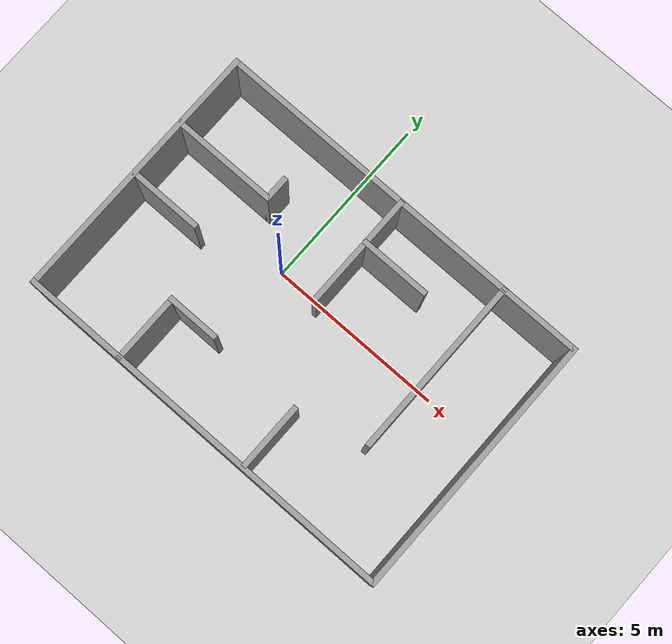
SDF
<sdf version="1.7">
 <world name="default">
  <light name="sun" type="directional">
   <pose>0 0 10 0 -0 0</pose>
   <diffuse>0.8 0.8 0.8 1</diffuse>
   <specular>0.2 0.2 0.2 1</specular>
   <attenuation>
    <range>1000</range>
    <constant>0.9</constant>
    <linear>0.01</linear>
    <quadratic>0.001</quadratic>
   </attenuation>
   <direction>-0.5 0.1 -0.9</direction>
   <spot><inner_angle>0</inner_angle><outer_angle>0</outer_angle><falloff>0</falloff></spot>
  </light>
  <model name="ground_plane">
   <static>1</static>
   <link name="link">
    <collision name="collision">
     <geometry><plane><normal>0 0 1</normal><size>100 100</size></plane></geometry>
     <surface><friction><ode><mu>100</mu><mu2>50</mu2></ode></friction></surface>
    </collision>
    <visual name="visual">
     <cast_shadows>0</cast_shadows>
     <geometry><plane><normal>0 0 1</normal><size>100 100</size></plane></geometry>
     <material>
      <script><uri>file://media/materials/scripts/gazebo.material</uri><name>Gazebo/Grey</name></script>
     </material>
    </visual>
   </link>
  </model>
  <gravity>0 0 -9.8</gravity>
  <magnetic_field>6e-06 2.3e-05 -4.2e-05</magnetic_field>
  <atmosphere type="adiabatic"/>
  <physics type="ode">
   <max_step_size>0.001</max_step_size>
   <real_time_factor>1</real_time_factor>
   <real_time_update_rate>1000</real_time_update_rate>
  </physics>
  <scene><ambient>0.4 0.4 0.4 1</ambient><background>0.7 0.7 0.7 1</background><shadows>1</shadows></scene>
  <audio><device>default</device></audio>
  <spherical_coordinates>
   <surface_model>EARTH_WGS84</surface_model>
   <latitude_deg>0</latitude_deg>
   <longitude_deg>0</longitude_deg>
   <elevation>0</elevation>
   <heading_deg>0</heading_deg>
  </spherical_coordinates>
  <model name="building1_0">
   <link name="Wall_3">
    <pose>0 -3.675 0 0 -0 0</pose>
    <visual name="Wall_3_Visual">
     <pose>0 0 1.25 0 -0 0</pose>
     <geometry><box><size>11 0.15 2.5</size></box></geometry>
     <material>
      <script><uri>file://media/materials/scripts/gazebo.material</uri><name>Gazebo/Grey</name></script>
      <ambient>1 1 1 1</ambient>
      <shader type="pixel"/>
     </material>
     <meta><layer>0</layer></meta>
    </visual>
    <collision name="Wall_3_Collision">
     <pose>0 0 1.25 0 -0 0</pose>
     <geometry><box><size>11 0.15 2.5</size></box></geometry>
     <surface>
      <friction>
       <ode><mu>1</mu><mu2>1</mu2><fdir1>0 0 0</fdir1><slip1>0</slip1><slip2>0</slip2></ode>
       <torsional>
        <coefficient>1</coefficient>
        <patch_radius>0</patch_radius>
        <surface_radius>0</surface_radius>
        <use_patch_radius>1</use_patch_radius>
        <ode><slip>0</slip></ode>
       </torsional>
      </friction>
      <bounce><restitution_coefficient>0</restitution_coefficient><threshold>1e+06</threshold></bounce>
      <contact>
       <collide_without_contact>0</collide_without_contact>
       <collide_without_contact_bitmask>1</collide_without_contact_bitmask>
       <collide_bitmask>1</collide_bitmask>
       <ode>
        <soft_cfm>0</soft_cfm>
        <soft_erp>0.2</soft_erp>
        <kp>1e+13</kp>
        <kd>1</kd>
        <max_vel>0.01</max_vel>
        <min_depth>0</min_depth>
       </ode>
       <bullet>
        <split_impulse>1</split_impulse>
        <split_impulse_penetration_threshold>-0.01</split_impulse_penetration_threshold>
        <soft_cfm>0</soft_cfm>
        <soft_erp>0.2</soft_erp>
        <kp>1e+13</kp>
        <kd>1</kd>
       </bullet>
      </contact>
     </surface>
    </collision>
   </link>
   <link name="Wall_34">
    <pose>-3.98985 1.60681 0 0 -0 0</pose>
    <visual name="Wall_34_Visual">
     <pose>0 0 1.25 0 -0 0</pose>
     <geometry><box><size>3 0.15 2.5</size></box></geometry>
     <material>
      <script><uri>file://media/materials/scripts/gazebo.material</uri><name>Gazebo/Grey</name></script>
      <ambient>1 1 1 1</ambient>
      <shader type="pixel"/>
     </material>
     <meta><layer>0</layer></meta>
    </visual>
    <collision name="Wall_34_Collision">
     <pose>0 0 1.25 0 -0 0</pose>
     <geometry><box><size>3 0.15 2.5</size></box></geometry>
     <surface>
      <friction>
       <ode><mu>1</mu><mu2>1</mu2><fdir1>0 0 0</fdir1><slip1>0</slip1><slip2>0</slip2></ode>
       <torsional>
        <coefficient>1</coefficient>
        <patch_radius>0</patch_radius>
        <surface_radius>0</surface_radius>
        <use_patch_radius>1</use_patch_radius>
        <ode><slip>0</slip></ode>
       </torsional>
      </friction>
      <bounce><restitution_coefficient>0</restitution_coefficient><threshold>1e+06</threshold></bounce>
      <contact>
       <collide_without_contact>0</collide_without_contact>
       <collide_without_contact_bitmask>1</collide_without_contact_bitmask>
       <collide_bitmask>1</collide_bitmask>
       <ode>
        <soft_cfm>0</soft_cfm>
        <soft_erp>0.2</soft_erp>
        <kp>1e+13</kp>
        <kd>1</kd>
        <max_vel>0.01</max_vel>
        <min_depth>0</min_depth>
       </ode>
       <bullet>
        <split_impulse>1</split_impulse>
        <split_impulse_penetration_threshold>-0.01</split_impulse_penetration_threshold>
        <soft_cfm>0</soft_cfm>
        <soft_erp>0.2</soft_erp>
        <kp>1e+13</kp>
        <kd>1</kd>
       </bullet>
      </contact>
     </surface>
    </collision>
   </link>
   <link name="Wall_35">
    <pose>-2.56485 1.90681 0 0 -0 1.5708</pose>
    <visual name="Wall_35_Visual">
     <pose>0 0 1.25 0 -0 0</pose>
     <geometry><box><size>0.75 0.15 2.5</size></box></geometry>
     <material>
      <script><uri>file://media/materials/scripts/gazebo.material</uri><name>Gazebo/Grey</name></script>
      <ambient>1 1 1 1</ambient>
      <shader type="pixel"/>
     </material>
     <meta><layer>0</layer></meta>
    </visual>
    <collision name="Wall_35_Collision">
     <pose>0 0 1.25 0 -0 0</pose>
     <geometry><box><size>0.75 0.15 2.5</size></box></geometry>
     <surface>
      <friction>
       <ode><mu>1</mu><mu2>1</mu2><fdir1>0 0 0</fdir1><slip1>0</slip1><slip2>0</slip2></ode>
       <torsional>
        <coefficient>1</coefficient>
        <patch_radius>0</patch_radius>
        <surface_radius>0</surface_radius>
        <use_patch_radius>1</use_patch_radius>
        <ode><slip>0</slip></ode>
       </torsional>
      </friction>
      <bounce><restitution_coefficient>0</restitution_coefficient><threshold>1e+06</threshold></bounce>
      <contact>
       <collide_without_contact>0</collide_without_contact>
       <collide_without_contact_bitmask>1</collide_without_contact_bitmask>
       <collide_bitmask>1</collide_bitmask>
       <ode>
        <soft_cfm>0</soft_cfm>
        <soft_erp>0.2</soft_erp>
        <kp>1e+13</kp>
        <kd>1</kd>
        <max_vel>0.01</max_vel>
        <min_depth>0</min_depth>
       </ode>
       <bullet>
        <split_impulse>1</split_impulse>
        <split_impulse_penetration_threshold>-0.01</split_impulse_penetration_threshold>
        <soft_cfm>0</soft_cfm>
        <soft_erp>0.2</soft_erp>
        <kp>1e+13</kp>
        <kd>1</kd>
       </bullet>
      </contact>
     </surface>
    </collision>
   </link>
   <link name="Wall_37">
    <pose>-2.6376 -2.76847 0 0 -0 1.5708</pose>
    <inertial>
     <inertia><ixx>0</ixx><ixy>0</ixy><ixz>0</ixz><iyy>0</iyy><iyz>0</iyz><izz>0</izz></inertia>
     <mass>0</mass>
    </inertial>
    <visual name="Wall_37_Visual">
     <pose>0 0 1.25 0 -0 0</pose>
     <geometry><box><size>1.89664 0.15 2.5</size></box></geometry>
     <material>
      <script><uri>file://media/materials/scripts/gazebo.material</uri><name>Gazebo/Grey</name></script>
      <ambient>1 1 1 1</ambient>
      <shader type="pixel"/>
     </material>
     <meta><layer>0</layer></meta>
    </visual>
    <collision name="Wall_37_Collision">
     <pose>0 0 1.25 0 -0 0</pose>
     <geometry><box><size>1.89664 0.15 2.5</size></box></geometry>
     <surface>
      <friction>
       <ode><mu>1</mu><mu2>1</mu2><fdir1>0 0 0</fdir1><slip1>0</slip1><slip2>0</slip2></ode>
       <torsional>
        <coefficient>1</coefficient>
        <patch_radius>0</patch_radius>
        <surface_radius>0</surface_radius>
        <use_patch_radius>1</use_patch_radius>
        <ode><slip>0</slip></ode>
       </torsional>
      </friction>
      <bounce><restitution_coefficient>0</restitution_coefficient><threshold>1e+06</threshold></bounce>
      <contact>
       <collide_without_contact>0</collide_without_contact>
       <collide_without_contact_bitmask>1</collide_without_contact_bitmask>
       <collide_bitmask>1</collide_bitmask>
       <ode>
        <soft_cfm>0</soft_cfm>
        <soft_erp>0.2</soft_erp>
        <kp>1e+13</kp>
        <kd>1</kd>
        <max_vel>0.01</max_vel>
        <min_depth>0</min_depth>
       </ode>
       <bullet>
        <split_impulse>1</split_impulse>
        <split_impulse_penetration_threshold>-0.01</split_impulse_penetration_threshold>
        <soft_cfm>0</soft_cfm>
        <soft_erp>0.2</soft_erp>
        <kp>1e+13</kp>
        <kd>1</kd>
       </bullet>
      </contact>
     </surface>
    </collision>
   </link>
   <link name="Wall_38">
    <pose>-1.9626 -1.79418 0 0 -0 0</pose>
    <visual name="Wall_38_Visual">
     <pose>0 0 1.25 0 -0 0</pose>
     <geometry><box><size>1.5 0.15 2.5</size></box></geometry>
     <material>
      <script><uri>file://media/materials/scripts/gazebo.material</uri><name>Gazebo/Grey</name></script>
      <ambient>1 1 1 1</ambient>
      <shader type="pixel"/>
     </material>
     <meta><layer>0</layer></meta>
    </visual>
    <collision name="Wall_38_Collision">
     <pose>0 0 1.25 0 -0 0</pose>
     <geometry><box><size>1.5 0.15 2.5</size></box></geometry>
     <surface>
      <friction>
       <ode><mu>1</mu><mu2>1</mu2><fdir1>0 0 0</fdir1><slip1>0</slip1><slip2>0</slip2></ode>
       <torsional>
        <coefficient>1</coefficient>
        <patch_radius>0</patch_radius>
        <surface_radius>0</surface_radius>
        <use_patch_radius>1</use_patch_radius>
        <ode><slip>0</slip></ode>
       </torsional>
      </friction>
      <bounce><restitution_coefficient>0</restitution_coefficient><threshold>1e+06</threshold></bounce>
      <contact>
       <collide_without_contact>0</collide_without_contact>
       <collide_without_contact_bitmask>1</collide_without_contact_bitmask>
       <collide_bitmask>1</collide_bitmask>
       <ode>
        <soft_cfm>0</soft_cfm>
        <soft_erp>0.2</soft_erp>
        <kp>1e+13</kp>
        <kd>1</kd>
        <max_vel>0.01</max_vel>
        <min_depth>0</min_depth>
       </ode>
       <bullet>
        <split_impulse>1</split_impulse>
        <split_impulse_penetration_threshold>-0.01</split_impulse_penetration_threshold>
        <soft_cfm>0</soft_cfm>
        <soft_erp>0.2</soft_erp>
        <kp>1e+13</kp>
        <kd>1</kd>
       </bullet>
      </contact>
     </surface>
    </collision>
   </link>
   <link name="Wall_43">
    <pose>1.33225 -2.7093 0 0 0 -1.5708</pose>
    <inertial>
     <inertia><ixx>0</ixx><ixy>0</ixy><ixz>0</ixz><iyy>0</iyy><iyz>0</iyz><izz>0</izz></inertia>
     <mass>0</mass>
    </inertial>
    <visual name="Wall_43_Visual">
     <pose>0 0 1.25 0 -0 0</pose>
     <geometry><box><size>1.90473 0.15 2.5</size></box></geometry>
     <material>
      <script><uri>file://media/materials/scripts/gazebo.material</uri><name>Gazebo/Grey</name></script>
      <ambient>1 1 1 1</ambient>
      <shader type="pixel"/>
     </material>
     <meta><layer>0</layer></meta>
    </visual>
    <collision name="Wall_43_Collision">
     <pose>0 0 1.25 0 -0 0</pose>
     <geometry><box><size>1.90473 0.15 2.5</size></box></geometry>
     <surface>
      <friction>
       <ode><mu>1</mu><mu2>1</mu2><fdir1>0 0 0</fdir1><slip1>0</slip1><slip2>0</slip2></ode>
       <torsional>
        <coefficient>1</coefficient>
        <patch_radius>0</patch_radius>
        <surface_radius>0</surface_radius>
        <use_patch_radius>1</use_patch_radius>
        <ode><slip>0</slip></ode>
       </torsional>
      </friction>
      <bounce><restitution_coefficient>0</restitution_coefficient><threshold>1e+06</threshold></bounce>
      <contact>
       <collide_without_contact>0</collide_without_contact>
       <collide_without_contact_bitmask>1</collide_without_contact_bitmask>
       <collide_bitmask>1</collide_bitmask>
       <ode>
        <soft_cfm>0</soft_cfm>
        <soft_erp>0.2</soft_erp>
        <kp>1e+13</kp>
        <kd>1</kd>
        <max_vel>0.01</max_vel>
        <min_depth>0</min_depth>
       </ode>
       <bullet>
        <split_impulse>1</split_impulse>
        <split_impulse_penetration_threshold>-0.01</split_impulse_penetration_threshold>
        <soft_cfm>0</soft_cfm>
        <soft_erp>0.2</soft_erp>
        <kp>1e+13</kp>
        <kd>1</kd>
       </bullet>
      </contact>
     </surface>
    </collision>
   </link>
   <link name="Wall_45">
    <pose>3.22107 1.19267 0 0 0 -1.5708</pose>
    <inertial>
     <inertia><ixx>0</ixx><ixy>0</ixy><ixz>0</ixz><iyy>0</iyy><iyz>0</iyz><izz>0</izz></inertia>
     <mass>0</mass>
    </inertial>
    <visual name="Wall_45_Visual">
     <pose>0 0 1.25 0 -0 0</pose>
     <geometry><box><size>5.09033 0.15 2.5</size></box></geometry>
     <material>
      <script><uri>file://media/materials/scripts/gazebo.material</uri><name>Gazebo/Grey</name></script>
      <ambient>1 1 1 1</ambient>
      <shader type="pixel"/>
     </material>
     <meta><layer>0</layer></meta>
    </visual>
    <collision name="Wall_45_Collision">
     <pose>0 0 1.25 0 -0 0</pose>
     <geometry><box><size>5.09033 0.15 2.5</size></box></geometry>
     <surface>
      <friction>
       <ode><mu>1</mu><mu2>1</mu2><fdir1>0 0 0</fdir1><slip1>0</slip1><slip2>0</slip2></ode>
       <torsional>
        <coefficient>1</coefficient>
        <patch_radius>0</patch_radius>
        <surface_radius>0</surface_radius>
        <use_patch_radius>1</use_patch_radius>
        <ode><slip>0</slip></ode>
       </torsional>
      </friction>
      <bounce><restitution_coefficient>0</restitution_coefficient><threshold>1e+06</threshold></bounce>
      <contact>
       <collide_without_contact>0</collide_without_contact>
       <collide_without_contact_bitmask>1</collide_without_contact_bitmask>
       <collide_bitmask>1</collide_bitmask>
       <ode>
        <soft_cfm>0</soft_cfm>
        <soft_erp>0.2</soft_erp>
        <kp>1e+13</kp>
        <kd>1</kd>
        <max_vel>0.01</max_vel>
        <min_depth>0</min_depth>
       </ode>
       <bullet>
        <split_impulse>1</split_impulse>
        <split_impulse_penetration_threshold>-0.01</split_impulse_penetration_threshold>
        <soft_cfm>0</soft_cfm>
        <soft_erp>0.2</soft_erp>
        <kp>1e+13</kp>
        <kd>1</kd>
       </bullet>
      </contact>
     </surface>
    </collision>
   </link>
   <link name="Wall_47">
    <pose>-0.045501 2.09346 0 0 0 -1.5708</pose>
    <visual name="Wall_47_Visual">
     <pose>0 0 1.25 0 -0 0</pose>
     <geometry><box><size>3.25 0.15 2.5</size></box></geometry>
     <material>
      <script><uri>file://media/materials/scripts/gazebo.material</uri><name>Gazebo/Grey</name></script>
      <ambient>1 1 1 1</ambient>
      <shader type="pixel"/>
     </material>
     <meta><layer>0</layer></meta>
    </visual>
    <collision name="Wall_47_Collision">
     <pose>0 0 1.25 0 -0 0</pose>
     <geometry><box><size>3.25 0.15 2.5</size></box></geometry>
     <surface>
      <friction>
       <ode><mu>1</mu><mu2>1</mu2><fdir1>0 0 0</fdir1><slip1>0</slip1><slip2>0</slip2></ode>
       <torsional>
        <coefficient>1</coefficient>
        <patch_radius>0</patch_radius>
        <surface_radius>0</surface_radius>
        <use_patch_radius>1</use_patch_radius>
        <ode><slip>0</slip></ode>
       </torsional>
      </friction>
      <bounce><restitution_coefficient>0</restitution_coefficient><threshold>1e+06</threshold></bounce>
      <contact>
       <collide_without_contact>0</collide_without_contact>
       <collide_without_contact_bitmask>1</collide_without_contact_bitmask>
       <collide_bitmask>1</collide_bitmask>
       <ode>
        <soft_cfm>0</soft_cfm>
        <soft_erp>0.2</soft_erp>
        <kp>1e+13</kp>
        <kd>1</kd>
        <max_vel>0.01</max_vel>
        <min_depth>0</min_depth>
       </ode>
       <bullet>
        <split_impulse>1</split_impulse>
        <split_impulse_penetration_threshold>-0.01</split_impulse_penetration_threshold>
        <soft_cfm>0</soft_cfm>
        <soft_erp>0.2</soft_erp>
        <kp>1e+13</kp>
        <kd>1</kd>
       </bullet>
      </contact>
     </surface>
    </collision>
   </link>
   <link name="Wall_49">
    <pose>0.879499 2.34741 0 0 -0 0</pose>
    <visual name="Wall_49_Visual">
     <pose>0 0 1.25 0 -0 0</pose>
     <geometry><box><size>2 0.15 2.5</size></box></geometry>
     <material>
      <script><uri>file://media/materials/scripts/gazebo.material</uri><name>Gazebo/Grey</name></script>
      <ambient>1 1 1 1</ambient>
      <shader type="pixel"/>
     </material>
     <meta><layer>0</layer></meta>
    </visual>
    <collision name="Wall_49_Collision">
     <pose>0 0 1.25 0 -0 0</pose>
     <geometry><box><size>2 0.15 2.5</size></box></geometry>
     <surface>
      <friction>
       <ode><mu>1</mu><mu2>1</mu2><fdir1>0 0 0</fdir1><slip1>0</slip1><slip2>0</slip2></ode>
       <torsional>
        <coefficient>1</coefficient>
        <patch_radius>0</patch_radius>
        <surface_radius>0</surface_radius>
        <use_patch_radius>1</use_patch_radius>
        <ode><slip>0</slip></ode>
       </torsional>
      </friction>
      <bounce><restitution_coefficient>0</restitution_coefficient><threshold>1e+06</threshold></bounce>
      <contact>
       <collide_without_contact>0</collide_without_contact>
       <collide_without_contact_bitmask>1</collide_without_contact_bitmask>
       <collide_bitmask>1</collide_bitmask>
       <ode>
        <soft_cfm>0</soft_cfm>
        <soft_erp>0.2</soft_erp>
        <kp>1e+13</kp>
        <kd>1</kd>
        <max_vel>0.01</max_vel>
        <min_depth>0</min_depth>
       </ode>
       <bullet>
        <split_impulse>1</split_impulse>
        <split_impulse_penetration_threshold>-0.01</split_impulse_penetration_threshold>
        <soft_cfm>0</soft_cfm>
        <soft_erp>0.2</soft_erp>
        <kp>1e+13</kp>
        <kd>1</kd>
       </bullet>
      </contact>
     </surface>
    </collision>
   </link>
   <link name="Wall_5">
    <pose>-5.425 0 0 0 -0 1.5708</pose>
    <visual name="Wall_5_Visual">
     <pose>0 0 1.25 0 -0 0</pose>
     <geometry><box><size>7.5 0.15 2.5</size></box></geometry>
     <material>
      <script><uri>file://media/materials/scripts/gazebo.material</uri><name>Gazebo/Grey</name></script>
      <ambient>1 1 1 1</ambient>
      <shader type="pixel"/>
     </material>
     <meta><layer>0</layer></meta>
    </visual>
    <collision name="Wall_5_Collision">
     <pose>0 0 1.25 0 -0 0</pose>
     <geometry><box><size>7.5 0.15 2.5</size></box></geometry>
     <surface>
      <friction>
       <ode><mu>1</mu><mu2>1</mu2><fdir1>0 0 0</fdir1><slip1>0</slip1><slip2>0</slip2></ode>
       <torsional>
        <coefficient>1</coefficient>
        <patch_radius>0</patch_radius>
        <surface_radius>0</surface_radius>
        <use_patch_radius>1</use_patch_radius>
        <ode><slip>0</slip></ode>
       </torsional>
      </friction>
      <bounce><restitution_coefficient>0</restitution_coefficient><threshold>1e+06</threshold></bounce>
      <contact>
       <collide_without_contact>0</collide_without_contact>
       <collide_without_contact_bitmask>1</collide_without_contact_bitmask>
       <collide_bitmask>1</collide_bitmask>
       <ode>
        <soft_cfm>0</soft_cfm>
        <soft_erp>0.2</soft_erp>
        <kp>1e+13</kp>
        <kd>1</kd>
        <max_vel>0.01</max_vel>
        <min_depth>0</min_depth>
       </ode>
       <bullet>
        <split_impulse>1</split_impulse>
        <split_impulse_penetration_threshold>-0.01</split_impulse_penetration_threshold>
        <soft_cfm>0</soft_cfm>
        <soft_erp>0.2</soft_erp>
        <kp>1e+13</kp>
        <kd>1</kd>
       </bullet>
      </contact>
     </surface>
    </collision>
   </link>
   <link name="Wall_53">
    <pose>-4.44397 -0.07277 0 0 -0 0</pose>
    <inertial>
     <inertia><ixx>0</ixx><ixy>0</ixy><ixz>0</ixz><iyy>0</iyy><iyz>0</iyz><izz>0</izz></inertia>
     <mass>0</mass>
    </inertial>
    <visual name="Wall_53_Visual">
     <pose>0 0 1.25 0 -0 0</pose>
     <geometry><box><size>2.11168 0.15 2.5</size></box></geometry>
     <material>
      <script><uri>file://media/materials/scripts/gazebo.material</uri><name>Gazebo/Grey</name></script>
      <ambient>1 1 1 1</ambient>
      <shader type="pixel"/>
     </material>
     <meta><layer>0</layer></meta>
    </visual>
    <collision name="Wall_53_Collision">
     <pose>0 0 1.25 0 -0 0</pose>
     <geometry><box><size>2.11168 0.15 2.5</size></box></geometry>
     <surface>
      <friction>
       <ode><mu>1</mu><mu2>1</mu2><fdir1>0 0 0</fdir1><slip1>0</slip1><slip2>0</slip2></ode>
       <torsional>
        <coefficient>1</coefficient>
        <patch_radius>0</patch_radius>
        <surface_radius>0</surface_radius>
        <use_patch_radius>1</use_patch_radius>
        <ode><slip>0</slip></ode>
       </torsional>
      </friction>
      <bounce><restitution_coefficient>0</restitution_coefficient><threshold>1e+06</threshold></bounce>
      <contact>
       <collide_without_contact>0</collide_without_contact>
       <collide_without_contact_bitmask>1</collide_without_contact_bitmask>
       <collide_bitmask>1</collide_bitmask>
       <ode>
        <soft_cfm>0</soft_cfm>
        <soft_erp>0.2</soft_erp>
        <kp>1e+13</kp>
        <kd>1</kd>
        <max_vel>0.01</max_vel>
        <min_depth>0</min_depth>
       </ode>
       <bullet>
        <split_impulse>1</split_impulse>
        <split_impulse_penetration_threshold>-0.01</split_impulse_penetration_threshold>
        <soft_cfm>0</soft_cfm>
        <soft_erp>0.2</soft_erp>
        <kp>1e+13</kp>
        <kd>1</kd>
       </bullet>
      </contact>
     </surface>
    </collision>
   </link>
   <link name="Wall_6">
    <pose>0 3.675 0 0 -0 0</pose>
    <visual name="Wall_6_Visual">
     <pose>0 0 1.25 0 -0 0</pose>
     <geometry><box><size>11 0.15 2.5</size></box></geometry>
     <material>
      <script><uri>file://media/materials/scripts/gazebo.material</uri><name>Gazebo/Grey</name></script>
      <ambient>1 1 1 1</ambient>
      <shader type="pixel"/>
     </material>
     <meta><layer>0</layer></meta>
    </visual>
    <collision name="Wall_6_Collision">
     <pose>0 0 1.25 0 -0 0</pose>
     <geometry><box><size>11 0.15 2.5</size></box></geometry>
     <surface>
      <friction>
       <ode><mu>1</mu><mu2>1</mu2><fdir1>0 0 0</fdir1><slip1>0</slip1><slip2>0</slip2></ode>
       <torsional>
        <coefficient>1</coefficient>
        <patch_radius>0</patch_radius>
        <surface_radius>0</surface_radius>
        <use_patch_radius>1</use_patch_radius>
        <ode><slip>0</slip></ode>
       </torsional>
      </friction>
      <bounce><restitution_coefficient>0</restitution_coefficient><threshold>1e+06</threshold></bounce>
      <contact>
       <collide_without_contact>0</collide_without_contact>
       <collide_without_contact_bitmask>1</collide_without_contact_bitmask>
       <collide_bitmask>1</collide_bitmask>
       <ode>
        <soft_cfm>0</soft_cfm>
        <soft_erp>0.2</soft_erp>
        <kp>1e+13</kp>
        <kd>1</kd>
        <max_vel>0.01</max_vel>
        <min_depth>0</min_depth>
       </ode>
       <bullet>
        <split_impulse>1</split_impulse>
        <split_impulse_penetration_threshold>-0.01</split_impulse_penetration_threshold>
        <soft_cfm>0</soft_cfm>
        <soft_erp>0.2</soft_erp>
        <kp>1e+13</kp>
        <kd>1</kd>
       </bullet>
      </contact>
     </surface>
    </collision>
   </link>
   <link name="Wall_7">
    <pose>5.425 0 0 0 0 -1.5708</pose>
    <visual name="Wall_7_Visual">
     <pose>0 0 1.25 0 -0 0</pose>
     <geometry><box><size>7.5 0.15 2.5</size></box></geometry>
     <material>
      <script><uri>file://media/materials/scripts/gazebo.material</uri><name>Gazebo/Grey</name></script>
      <ambient>1 1 1 1</ambient>
      <shader type="pixel"/>
     </material>
     <meta><layer>0</layer></meta>
    </visual>
    <collision name="Wall_7_Collision">
     <pose>0 0 1.25 0 -0 0</pose>
     <geometry><box><size>7.5 0.15 2.5</size></box></geometry>
     <surface>
      <friction>
       <ode><mu>1</mu><mu2>1</mu2><fdir1>0 0 0</fdir1><slip1>0</slip1><slip2>0</slip2></ode>
       <torsional>
        <coefficient>1</coefficient>
        <patch_radius>0</patch_radius>
        <surface_radius>0</surface_radius>
        <use_patch_radius>1</use_patch_radius>
        <ode><slip>0</slip></ode>
       </torsional>
      </friction>
      <bounce><restitution_coefficient>0</restitution_coefficient><threshold>1e+06</threshold></bounce>
      <contact>
       <collide_without_contact>0</collide_without_contact>
       <collide_without_contact_bitmask>1</collide_without_contact_bitmask>
       <collide_bitmask>1</collide_bitmask>
       <ode>
        <soft_cfm>0</soft_cfm>
        <soft_erp>0.2</soft_erp>
        <kp>1e+13</kp>
        <kd>1</kd>
        <max_vel>0.01</max_vel>
        <min_depth>0</min_depth>
       </ode>
       <bullet>
        <split_impulse>1</split_impulse>
        <split_impulse_penetration_threshold>-0.01</split_impulse_penetration_threshold>
        <soft_cfm>0</soft_cfm>
        <soft_erp>0.2</soft_erp>
        <kp>1e+13</kp>
        <kd>1</kd>
       </bullet>
      </contact>
     </surface>
    </collision>
   </link>
   <static>1</static>
   <pose>1.38707 -0.742372 0 0 -0 0</pose>
  </model>
 </world>
</sdf>
